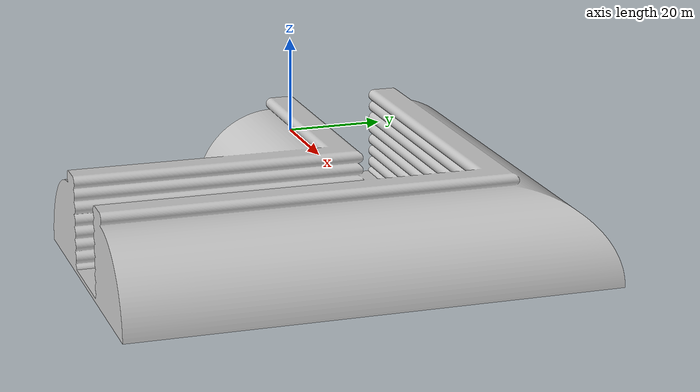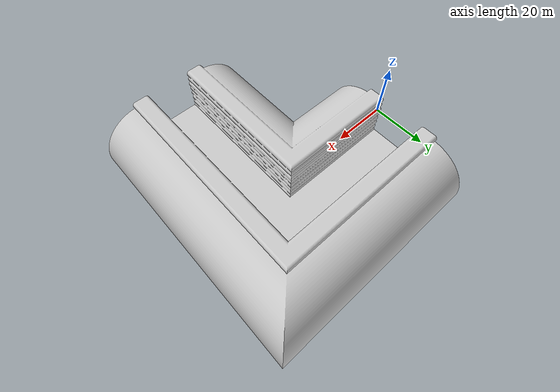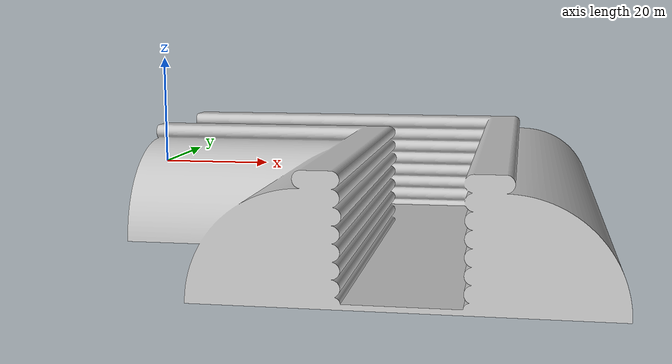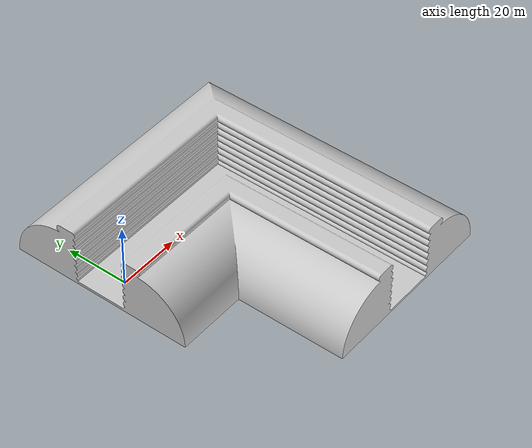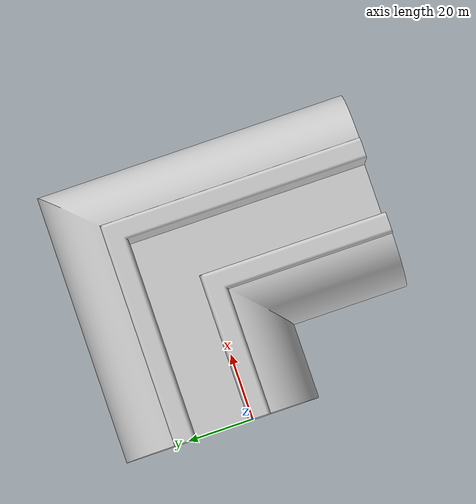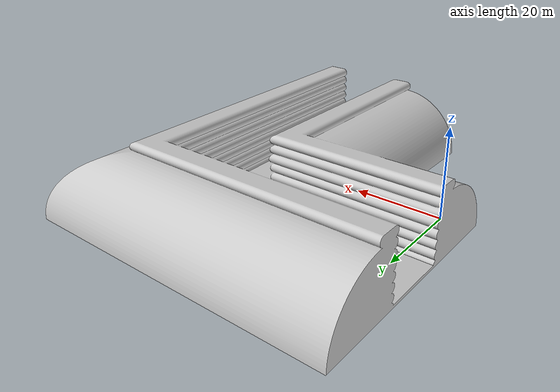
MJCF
<mujoco>
    <asset>
        <texture type="skybox" builtin="gradient" rgb1=".3 .5 .7" rgb2="0 0 0" width="32" height="512"/>
        <mesh file="mesh/Trench_90_Deg._Turn_V1.stl" name="trench_mesh"/>
        <material name="mat_trench" rgba="0.8 0.8 0.8 1"/>
    </asset>
    <worldbody>
        <body name="mesh_trench" pos="0 0 0">
            <geom type="mesh" mesh="trench_mesh" material="mat_trench"/>
        </body>
    </worldbody>
</mujoco>
